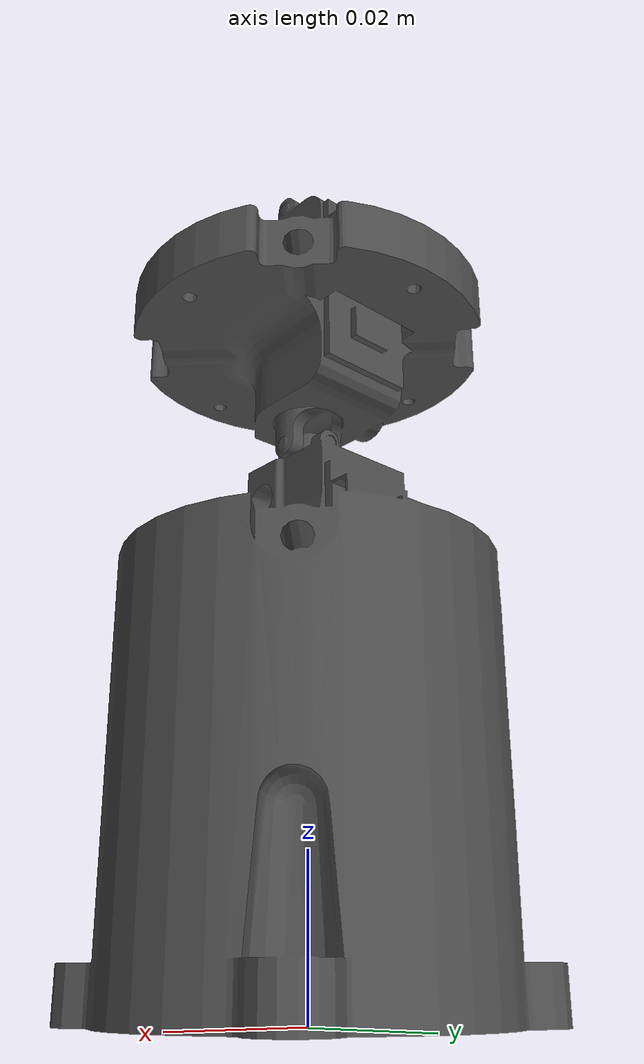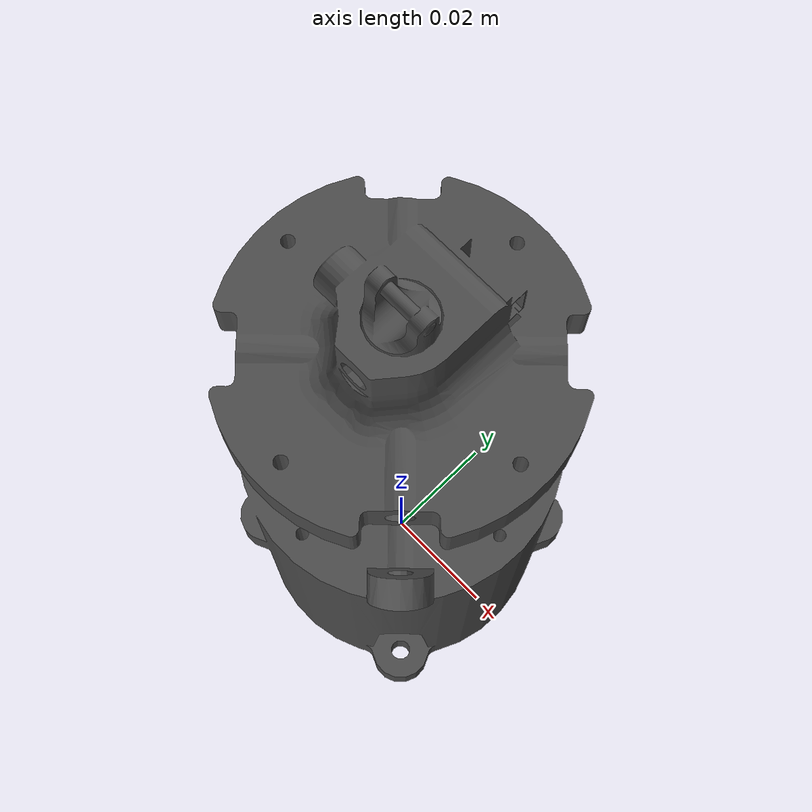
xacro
<?xml version="1.0"?>
<!-- Revolute-Revolute Manipulator -->
<robot name="continuum" xmlns:xacro="http://www.ros.org/wiki/xacro">

  <!-- Import all Gazebo-customization elements, including Gazebo colors -->
  <xacro:include filename="$(find continuum_urdf5)/urdf/continuum.gazebo" />
  <!-- Import Rviz colors -->
  <xacro:include filename="$(find continuum_urdf5)/urdf/materials.xacro" />
  <xacro:property name="scale" value="1" />
<xacro:property name="damping_on" value="1" />
<xacro:property name="damping_value" value="1E-04" />
  <link name="world"/>

  <joint name="fixed" type="fixed">
    <parent link="world"/>
    <child link="base_link"/>
  </joint>

  <link
    name="base_link">
    <inertial>
      <origin
        xyz="3.02643195391316E-06 2.14015053832333E-05 0.0289362445784326"
        rpy="0 0 0" />
      <mass
        value="${0.110606435738044*scale}" />
      <inertia
        ixx="${4.76917532529207E-05*scale}"
        ixy="${6.69262421229349E-10*scale}"
        ixz="${-1.08351479667314E-08*scale}"
        iyy="${4.77475569205128E-05*scale}"
        iyz="${-6.85610799836889E-08*scale}"
        izz="${3.32699333263548E-05*scale}" />
    </inertial>
    <visual>
      <origin
        xyz="0 0 0"
        rpy="0 0 0" />
      <geometry>
        <mesh
          filename="package://continuum_urdf5/meshes/base_link.STL" />
      </geometry>
      <material
        name="">
        <color
          rgba="0.3 0.3 0.3 1" />
      </material>
    </visual>
    <collision>
      <origin
        xyz="0 0 0"
        rpy="0 0 0" />
      <geometry>
        <mesh
          filename="package://continuum_urdf5/meshes/base_link.STL" />
      </geometry>
    </collision>
  </link>
  <link
    name="link1z">
    <inertial>
      <origin
        xyz="-2.12299450200802E-08 -8.53256570954031E-09 -3.87613239293998E-08"
        rpy="0 0 0" />
      <mass
        value="${5.10060794085737E-05*scale}" />
      <inertia
        ixx="${1.75822535577782E-10*scale}"
        ixy="${3.83487536800791E-15*scale}"
        ixz="${1.94367794649857E-16*scale}"
        iyy="${1.59351158296881E-10*scale}"
        iyz="${-5.38715599903244E-15*scale}"
        izz="${1.76043379343405E-10*scale}" />
    </inertial>
    <visual>
      <origin
        xyz="0 0 0"
        rpy="0 0 0" />
      <geometry>
        <mesh
          filename="package://continuum_urdf5/meshes/link1z.STL" />
      </geometry>
      <material
        name="">
        <color
          rgba="0.3 0.3 0.3 1" />
      </material>
    </visual>
    <collision>
      <origin
        xyz="0 0 0"
        rpy="0 0 0" />
      <geometry>
        <mesh
          filename="package://continuum_urdf5/meshes/link1z.STL" />
      </geometry>
    </collision>
  </link>
  <joint
    name="joint1z"
    type="continuous">
    <origin
      xyz="0 0 0.0736549953937202"
      rpy="1.5707963267949 0 0" />
    <parent
      link="base_link" />
    <child
      link="link1z" />
    <axis
      xyz="0 0 1" />
    <dynamics damping="${damping_on*damping_value}"/>
  </joint>
  <link
    name="link1x">
    <inertial>
      <origin
        xyz="-0.000190601760310987 0.019653930577233 -0.000724481897239907"
        rpy="0 0 0" />
      <mass
        value="${0.0187335148666279*scale}" />
      <inertia
        ixx="${2.41783807114397E-06*scale}"
        ixy="${4.25962338942814E-11*scale}"
        ixz="${1.51329387478613E-09*scale}"
        iyy="${3.8436241905514E-06*scale}"
        iyz="${6.71977364319963E-10*scale}"
        izz="${2.40694329358004E-06*scale}" />
    </inertial>
    <visual>
      <origin
        xyz="0 0 0"
        rpy="0 0 0" />
      <geometry>
        <mesh
          filename="package://continuum_urdf5/meshes/link1x.STL" />
      </geometry>
      <material
        name="">
        <color
          rgba="0.3 0.3 0.3 1" />
      </material>
    </visual>
    <collision>
      <origin
        xyz="0 0 0"
        rpy="0 0 0" />
      <geometry>
        <mesh
          filename="package://continuum_urdf5/meshes/link1x.STL" />
      </geometry>
    </collision>
  </link>
  <joint
    name="joint1x"
    type="continuous">
    <origin
      xyz="0 0 0"
      rpy="0 0 0" />
    <parent
      link="link1z" />
    <child
      link="link1x" />
    <axis
      xyz="-1 0 0" />
  <dynamics damping="${damping_on*damping_value}"/>
  </joint>
  <transmission name="tran1">
    <type>transmission_interface/SimpleTransmission</type>
    <joint name="joint1z">
      <hardwareInterface>hardware_interface/EffortJointInterface</hardwareInterface>
    </joint>
    <actuator name="motor1">
      <hardwareInterface>hardware_interface/EffortJointInterface</hardwareInterface>
      <mechanicalReduction>1</mechanicalReduction>
    </actuator>
  </transmission>
  <transmission name="tran2">
    <type>transmission_interface/SimpleTransmission</type>
    <joint name="joint1x">
      <hardwareInterface>hardware_interface/EffortJointInterface</hardwareInterface>
    </joint>
    <actuator name="motor2">
      <hardwareInterface>hardware_interface/EffortJointInterface</hardwareInterface>
      <mechanicalReduction>1</mechanicalReduction>
    </actuator>
  </transmission>
</robot>
